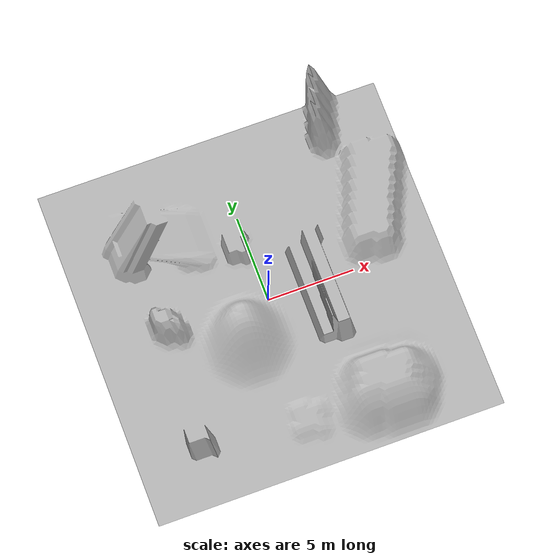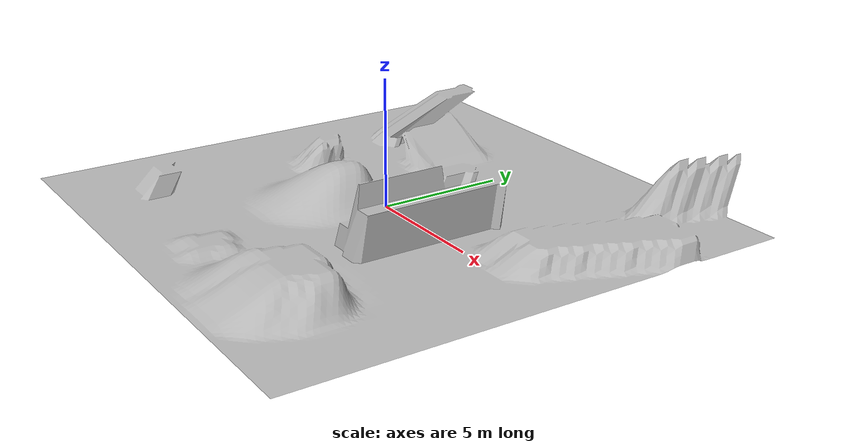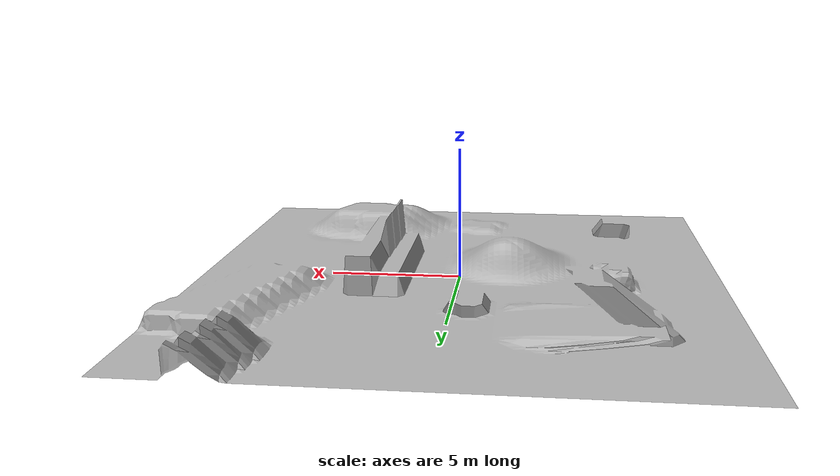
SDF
<?xml version="1.0" ?>
<sdf version="1.5">
  <model name="terrain_1">
    <pose>0 0 0 0 0 0</pose>
    <static>true</static>
    <link name="body">
      <visual name="visual">
        <geometry>
          <mesh><uri>model://terrain_1/media/terrain_1.dae</uri></mesh>
        </geometry>
		<material>
          <script>
            <uri>model://terrain_1/media/scripts</uri>
            <uri>model://terrain_1/media/Textures</uri>
            <name>RepeatedGrass/Diffuse</name>
          </script>
        </material>
      </visual>
      <collision name="collision">
        <geometry>
          <mesh><uri>model://terrain_1/media/terrain_1.dae</uri></mesh>
        </geometry>
        <surface>
	      <bounce>
		<restitution_coefficient>0</restitution_coefficient>
		<threshold>1e+06</threshold>
	      </bounce>
	      <contact>
		<collide_without_contact>0</collide_without_contact>
		<collide_without_contact_bitmask>1</collide_without_contact_bitmask>
		<collide_bitmask>1</collide_bitmask>
		<ode>
		  <soft_cfm>0</soft_cfm>
		  <soft_erp>0.2</soft_erp>
		  <kp>1e+6</kp>
		  <kd>1e+3</kd>
		  <max_vel>0</max_vel>
		  <min_depth>0.001</min_depth>
		</ode>
		<bullet>
		  <split_impulse>1</split_impulse>
		  <split_impulse_penetration_threshold>-0.01</split_impulse_penetration_threshold>
		  <soft_cfm>0</soft_cfm>
		  <soft_erp>0.2</soft_erp>
		  <kp>1e+6</kp>
		  <kd>1e+3</kd>
		</bullet>
	      </contact>
	      <soft_contact>
		<dart>
		  <bone_attachment>10</bone_attachment>
		  <stiffness>10</stiffness>
		  <damping>1</damping>
		</dart>
	      </soft_contact>
	      <friction>
		<ode>
		  <mu>1+e100</mu>
		  <mu2>10000</mu2>
		  <fdir1>0 0 1</fdir1>
		  <slip1>0</slip1>
		  <slip2>0</slip2>
		</ode>
		<torsional>
		  <coefficient>1</coefficient>
		  <patch_radius>0</patch_radius>
		  <surface_radius>0</surface_radius>
		  <use_patch_radius>1</use_patch_radius>
		  <ode>
		    <slip>0</slip>
		  </ode>
		</torsional>
	      </friction>
	    </surface>
      </collision>
    </link>
  </model>
</sdf>
